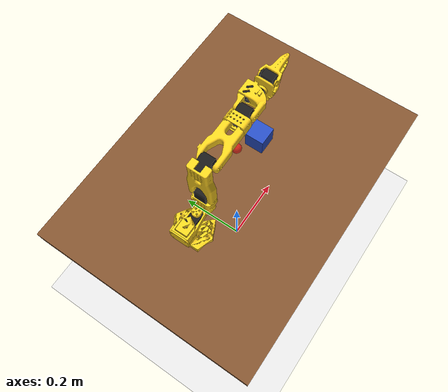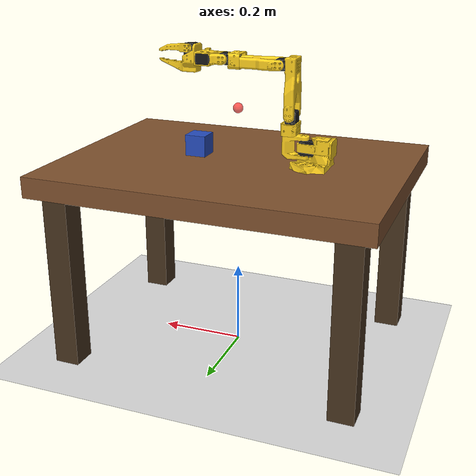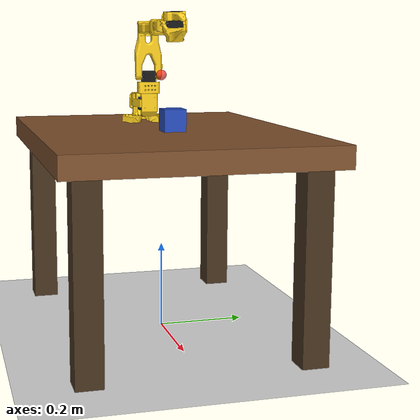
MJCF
<mujoco model="so101_new_calib">

  <option
      timestep="0.001"
      integrator="implicitfast"
  />

  <compiler angle="radian"/>

  <!-- =====================================================
       ASSETS
       ===================================================== -->

  <asset>
        <texture
      name="skybox"
      type="skybox"
      builtin="gradient"
      rgb1="0.98 0.99 1.00"
      rgb2="0.75 0.85 0.95"
      width="512"
      height="3072"
  />

  <texture
      name="floor_tex"
      type="2d"
      builtin="checker"
      rgb1="0.92 0.92 0.92"
      rgb2="0.82 0.82 0.82"
      width="512"
      height="512"
  />

  <material
      name="floor_mat"
      texture="floor_tex"
      texrepeat="8 8"
      reflectance="0.05"
      rgba="1 1 1 1"
  />

  <material
      name="leg_mat"
      rgba="0.28 0.20 0.12 1"
      reflectance="0.05"
  />
  <material
      name="table_mat"
      rgba="0.50 0.32 0.18 1"
      reflectance="0.08"
  />

  <material
      name="cube_mat"
      rgba="0.15 0.30 0.75 1"
      reflectance="0.15"
  />
    <mesh
        name="base_motor_holder_so101_v1"
        content_type="model/stl"
        file="assets/base_motor_holder_so101_v1.stl"
    />

    <mesh
        name="base_so101_v2"
        content_type="model/stl"
        file="assets/base_so101_v2.stl"
    />

    <mesh
        name="sts3215_03a_v1"
        content_type="model/stl"
        file="assets/sts3215_03a_v1.stl"
    />

    <mesh
        name="waveshare_mounting_plate_so101_v2"
        content_type="model/stl"
        file="assets/waveshare_mounting_plate_so101_v2.stl"
    />

    <mesh
        name="motor_holder_so101_base_v1"
        content_type="model/stl"
        file="assets/motor_holder_so101_base_v1.stl"
    />

    <mesh
        name="rotation_pitch_so101_v1"
        content_type="model/stl"
        file="assets/rotation_pitch_so101_v1.stl"
    />

    <mesh
        name="upper_arm_so101_v1"
        content_type="model/stl"
        file="assets/upper_arm_so101_v1.stl"
    />

    <mesh
        name="under_arm_so101_v1"
        content_type="model/stl"
        file="assets/under_arm_so101_v1.stl"
    />

    <mesh
        name="motor_holder_so101_wrist_v1"
        content_type="model/stl"
        file="assets/motor_holder_so101_wrist_v1.stl"
    />

    <mesh
        name="sts3215_03a_no_horn_v1"
        content_type="model/stl"
        file="assets/sts3215_03a_no_horn_v1.stl"
    />

    <mesh
        name="wrist_roll_pitch_so101_v2"
        content_type="model/stl"
        file="assets/wrist_roll_pitch_so101_v2.stl"
    />

    <mesh
        name="wrist_roll_follower_so101_v1"
        content_type="model/stl"
        file="assets/wrist_roll_follower_so101_v1.stl"
    />

    <mesh
        name="moving_jaw_so101_v1"
        content_type="model/stl"
        file="assets/moving_jaw_so101_v1.stl"
    />

  </asset>

  <!-- =====================================================
       WORLD
       ===================================================== -->

  <worldbody>

    <geom
        name="floor"
        type="plane"
        pos="0 0 0"
        size="2 2 0.1"
        material="floor_mat"
        friction="1 0.01 0.001"
    />
<body name="table_frame">

    <!-- Table top -->
    <geom
        name="table_top"
        type="box"
        pos="0 0 0.45"
        size="0.40 0.30 0.025"
        material="table_mat"
        friction="0.8 0.01 0.001"
    />

    <!-- Leg 1 -->
    <geom
        name="table_leg_1"
        type="box"
        pos="0.34 0.24 0.2125"
        size="0.03 0.03 0.2125"
        material="leg_mat"
        friction="0.8 0.01 0.001"
    />

    <!-- Leg 2 -->
    <geom
        name="table_leg_2"
        type="box"
        pos="0.34 -0.24 0.2125"
        size="0.03 0.03 0.2125"
        material="leg_mat"
        friction="0.8 0.01 0.001"
    />

    <!-- Leg 3 -->
    <geom
        name="table_leg_3"
        type="box"
        pos="-0.34 0.24 0.2125"
        size="0.03 0.03 0.2125"
        material="leg_mat"
        friction="0.8 0.01 0.001"
    />

    <!-- Leg 4 -->
    <geom
        name="table_leg_4"
        type="box"
        pos="-0.34 -0.24 0.2125"
        size="0.03 0.03 0.2125"
        material="leg_mat"
        friction="0.8 0.01 0.001"
    />

</body>

    <!-- ===================================================
         CUBE
         =================================================== -->

    <body name="cube" pos="0.10 0 0.505">
        <freejoint/>

        <geom
            name="cube_geom"
            type="box"
            size="0.025 0.025 0.025"
            mass="0.05"
            material="cube_mat"
            friction="0.7 0.01 0.001"
            contype="1"
            conaffinity="1"
        />
        </body>

    <body name="reach_target" mocap="true" pos="0 0 0.6">
        <site
            name="reach_target_site"
            type="sphere"
            size="0.012"
            rgba="1.0 0.1 0.1 0.7"
        />
    </body>

    <light
        name="key_light"
        pos="0 0 1.8"
        dir="0 0 -1"
        directional="true"
        diffuse="0.95 0.95 0.95"
        specular="0.25 0.25 0.25"
        castshadow="true"
    />

    <light
        name="fill_light"
        pos="1.0 -1.0 1.2"
        diffuse="0.35 0.35 0.35"
        specular="0.08 0.08 0.08"
    />

    <light
        name="rim_light"
        pos="-1.0 1.0 1.0"
        diffuse="0.20 0.20 0.22"
        specular="0.05 0.05 0.05"
    />

    <body
        name="robot_mount"
        pos="-0.20 0 0.4775"
    >

      <!-- =================================================
           ROBOT BASE
           ================================================= -->

      <geom
          pos="-0.00636471 -9.94414e-05 -0.0024"
          quat="0.499998 0.5 0.500002 0.5"
          type="mesh"
          rgba="1 0.82 0.12 1"
          mesh="base_motor_holder_so101_v1"
          contype="0"
          conaffinity="0"
      />

      <geom
          pos="-0.00636471 -8.97657e-09 -0.0024"
          quat="0.499998 0.5 0.500002 0.5"
          type="mesh"
          rgba="1 0.82 0.12 1"
          mesh="base_so101_v2"
          contype="0"
          conaffinity="0"
      />

      <geom
          pos="0.0263353 -8.97657e-09 0.0437"
          quat="1 0 0 0"
          type="mesh"
          rgba="0.1 0.1 0.1 1"
          mesh="sts3215_03a_v1"
          contype="0"
          conaffinity="0"
      />

      <geom
          pos="-0.0309827 -0.000199441 0.0474"
          quat="0.499998 0.5 0.500002 0.5"
          type="mesh"
          rgba="1 0.82 0.12 1"
          mesh="waveshare_mounting_plate_so101_v2"
      />

      <!-- =================================================
           SHOULDER
           ================================================= -->

      <body
          name="shoulder_link" gravcomp="0"
          pos="0.0388353 -8.97657e-09 0.0624"
          quat="1.76036e-12 1.32679e-06 -1 -1.32679e-06"
      >

        <inertial
            pos="-0.0307604 -1.66727e-05 -0.0252713"
            quat="0.999865 0.00149568 0.0097084 0.0132043"
            mass="0.100006"
            diaginertia="8.37836e-05 8.10388e-05 2.39552e-05"
        />

        <joint
            name="shoulder_pan"
            range="-1.91986 1.91986"
            actuatorfrcrange="-2.9 2.9"
        />

        <geom
            pos="-0.0303992 0.000422241 -0.0417"
            quat="0.499998 0.5 0.5 -0.500002"
            type="mesh"
            rgba="0.1 0.1 0.1 1"
            mesh="sts3215_03a_v1"
        />

        <geom
            pos="-0.0675992 -0.000177759 0.0158499"
            quat="0.499998 0.5 -0.5 0.500002"
            type="mesh"
            rgba="1 0.82 0.12 1"
            mesh="motor_holder_so101_base_v1"
        />

        <geom
            pos="0.0122008 2.22413e-05 0.0464"
            quat="0.707105 -0.707108 0 0"
            type="mesh"
            rgba="1 0.82 0.12 1"
            mesh="rotation_pitch_so101_v1"
        />

        <!-- ===============================================
             UPPER ARM
             =============================================== -->

        <body
            name="upper_arm_link" gravcomp="0"
            pos="-0.0303992 -0.0182778 -0.0542"
            quat="0.499998 -0.5 -0.5 -0.500002"
        >

          <inertial
              pos="-0.0898471 -0.00838224 0.0184089"
              quat="0.453195 0.454063 0.541891 0.542951"
              mass="0.103"
              diaginertia="0.000150873 0.000142487 3.72451e-05"
          />

          <joint
              name="shoulder_lift"
              range="-1.74533 1.74533"
              actuatorfrcrange="-2.9 2.9"
          />

          <geom
              pos="-0.11257 -0.0155 0.0187"
              quat="9.38184e-07 -0.707105 0.707108 -9.38187e-07"
              type="mesh"
              rgba="0.1 0.1 0.1 1"
              mesh="sts3215_03a_v1"
          />

          <geom
              pos="-0.065085 0.012 0.0182"
              quat="1.32679e-06 1 0 0"
              type="mesh"
              rgba="1 0.82 0.12 1"
              mesh="upper_arm_so101_v1"
          />

          <!-- =============================================
               LOWER ARM
               ============================================= -->

          <body
              name="lower_arm_link" gravcomp="0"
              pos="-0.11257 -0.028 0"
              quat="0.707105 0 0 0.707108"
          >

            <inertial
                pos="-0.0980701 0.00324376 0.0182831"
                quat="0.510729 0.517006 0.487966 0.483477"
                mass="0.104"
                diaginertia="0.000160262 0.000145304 2.83125e-05"
            />

            <joint
                name="elbow_flex"
                range="-1.69 1.69"
                actuatorfrcrange="-2.9 2.9"
            />

            <geom
                pos="-0.0648499 -0.032 0.0182"
                quat="1.32679e-06 1 0 0"
                type="mesh"
                rgba="1 0.82 0.12 1"
                mesh="under_arm_so101_v1"
            />

            <geom
                pos="-0.0648499 -0.032 0.018"
                quat="1.32679e-06 -1 0 0"
                type="mesh"
                rgba="1 0.82 0.12 1"
                mesh="motor_holder_so101_wrist_v1"
            />

            <geom
                pos="-0.1224 0.0052 0.0187"
                quat="1.76037e-12 -1.32679e-06 1 -1.32679e-06"
                type="mesh"
                rgba="0.1 0.1 0.1 1"
                mesh="sts3215_03a_v1"
            />

            <!-- ===========================================
                 WRIST
                 =========================================== -->

            <body
                name="wrist_link" gravcomp="0"
                pos="-0.1349 0.0052 0"
                quat="0.707105 0 0 -0.707108"
            >

              <inertial
                  pos="-0.000103312 -0.0386143 0.0281156"
                  quat="0.967143 0.254226 0.00162226 -0.000146307"
                  mass="0.079"
                  diaginertia="3.68265e-05 2.74474e-05 1.89434e-05"
              />

              <joint
                  name="wrist_flex"
                  range="-1.65806 1.65806"
                  actuatorfrcrange="-2.9 2.9"
              />

              <geom
                  pos="0 -0.0424 0.0306"
                  quat="0.499998 0.5 0.5 -0.500002"
                  type="mesh"
                  rgba="0.1 0.1 0.1 1"
                  mesh="sts3215_03a_no_horn_v1"
              />

              <geom
                  pos="0 -0.028 0.0181"
                  quat="0.499998 -0.5 -0.5 -0.500002"
                  type="mesh"
                  rgba="1 0.82 0.12 1"
                  mesh="wrist_roll_pitch_so101_v2"
              />

              <!-- =========================================
                   WRIST ROLL / GRIPPER
                   ========================================= -->

              <body
                  name="gripper_link" gravcomp="0"
                  pos="0 -0.0611 0.0181"
                  quat="0.0172101 -0.0172081 0.706899 0.706896"
              >

                <inertial
                    pos="0.000213627 0.000245138 -0.025187"
                    quat="0.600717 0.355993 0.35863 0.61951"
                    mass="0.087"
                    diaginertia="4.33735e-05 3.77229e-05 2.42839e-05"
                />

                <joint
                    name="wrist_roll"
                    range="-2.74385 2.84121"
                    actuatorfrcrange="-2.9 2.9"
                />

                <geom
                    pos="0.0077 0.0001 -0.0234"
                    quat="0.707105 -0.707108 0 0"
                    type="mesh"
                    rgba="0.1 0.1 0.1 1"
                    mesh="sts3215_03a_v1"
                />

                <geom
                    pos="0 -0.000218214 0.000949706"
                    quat="1.32679e-06 -1 0 0"
                    type="mesh"
                    rgba="1 0.82 0.12 1"
                    mesh="wrist_roll_follower_so101_v1"
                    friction="1.5 0.01 0.001"
                    solimp="0.9 0.95 0.001"
                    solref="0.005 1"
                />

                <!-- Official SO-101 end-effector / gripper frame -->
                <site
                    name="gripper_site"
                    pos="-0.0079 -0.000218121 -0.0981274"
                    quat="0 0 1 0"
                    size="0.008"
                    rgba="1 0 0 0"
                />
                <!-- =======================================
                     MOVING GRIPPER JAW
                     ======================================= -->

                <body
                    name="moving_jaw_so101_v1_link" gravcomp="0"
                    pos="0.0202 0.0188 -0.0234"
                    quat="0.707105 0.707108 -1.85362e-08 1.85363e-08"
                >

                  <inertial
                      pos="-0.00157495 -0.0300244 0.0192755"
                      quat="0.695265 0.717965 -0.0245618 -0.0230097"
                      mass="0.012"
                      diaginertia="6.63582e-06 5.29092e-06 1.86523e-06"
                  />

                  <joint
                      name="gripper"
                      range="-0.174533 1.74533"
                      actuatorfrcrange="-2.9 2.9"
                  />

                  <geom
                      pos="0 0 0.0189"
                      quat="1 0 0 0"
                      type="mesh"
                      rgba="1 0.82 0.12 1"
                      mesh="moving_jaw_so101_v1"
                      friction="1.5 0.01 0.001"
                      solimp="0.9 0.95 0.001"
                      solref="0.005 1"
                  />

                </body>

              </body>

            </body>

          </body>

        </body>

      </body>

    </body>

  </worldbody>

  <!-- =====================================================
       ACTUATORS
       ===================================================== -->

  <actuator>

    <position
        name="shoulder_pan_motor"
        joint="shoulder_pan"
        kp="20"
        dampratio="1"
        inheritrange="1"
    />

    <position
        name="shoulder_lift_motor"
        joint="shoulder_lift"
        kp="20"
        dampratio="1"
        inheritrange="1"
    />

    <position
        name="elbow_flex_motor"
        joint="elbow_flex"
        kp="20"
        dampratio="1"
        inheritrange="1"
    />

    <position
        name="wrist_flex_motor"
        joint="wrist_flex"
        kp="6"
        dampratio="1"
        inheritrange="1"
    />

    <position
        name="wrist_roll_motor"
        joint="wrist_roll"
        kp="4"
        dampratio="1"
        inheritrange="1"
    />

    <position
        name="gripper_motor"
        joint="gripper"
        kp="4"
        dampratio="1"
        inheritrange="1"
    />

  </actuator>

</mujoco>
